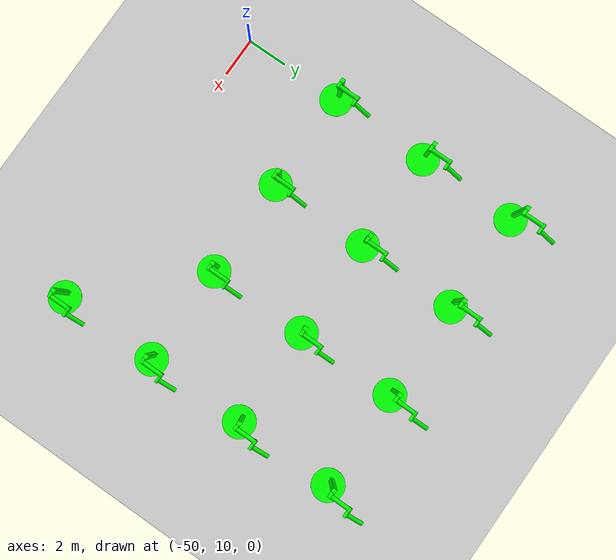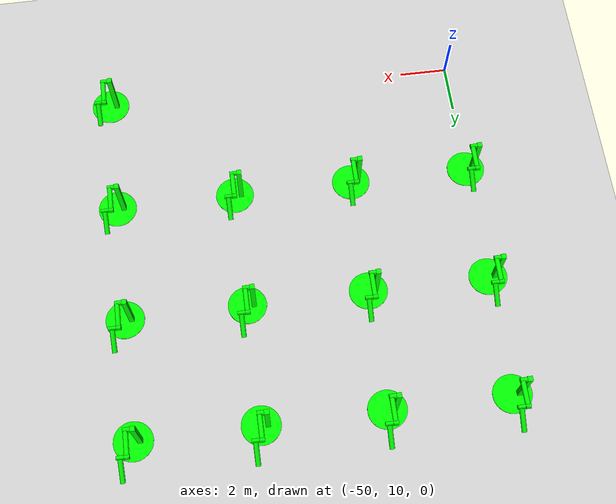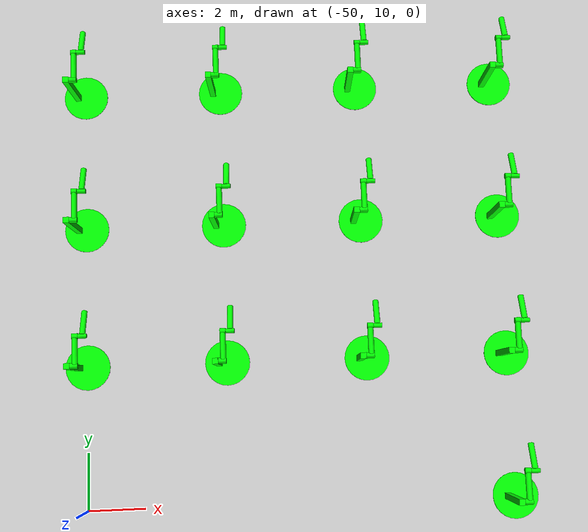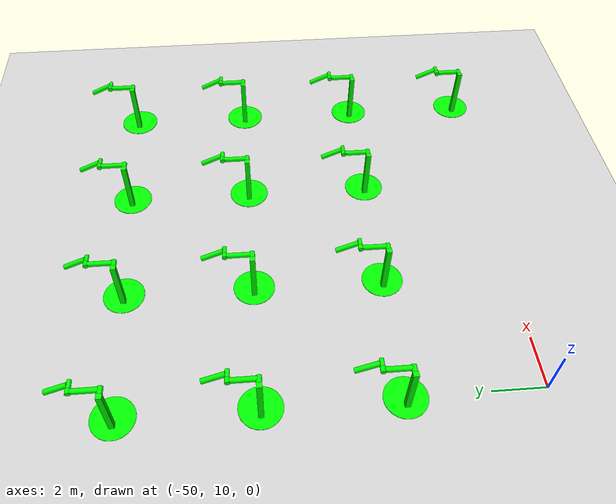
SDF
<sdf version="1.6">
 <world name="double_pendulums">
  <model name="ground_plane">
   <static>true</static>
   <link name="link">
    <collision name="collision">
     <geometry><plane><normal>0 0 1</normal><size>100 100</size></plane></geometry>
    </collision>
    <visual name="visual">
     <geometry><plane><normal>0 0 1</normal><size>100 100</size></plane></geometry>
     <material>
      <ambient>0.8 0.8 0.8 1</ambient>
      <diffuse>0.8 0.8 0.8 1</diffuse>
      <specular>0.8 0.8 0.8 1</specular>
     </material>
    </visual>
   </link>
  </model>
  <model name="dbl_pendulum_53">
   <pose>-35 10 0 0 0 0</pose>
   <link name="base">
    <inertial><mass>100</mass></inertial>
    <visual name="vis_plate_on_ground">
     <pose>0 0 0.01 0 0 0</pose>
     <geometry><cylinder><radius>0.8</radius><length>0.02</length></cylinder></geometry>
     <material><ambient>0 1 0 1</ambient><diffuse>0 1 0 1</diffuse><specular>0 1 0 1</specular></material>
    </visual>
    <visual name="vis_pole">
     <pose>-0.275 0 1.1 0 0 0</pose>
     <geometry><box><size>0.2 0.2 2.2</size></box></geometry>
     <material><ambient>0 1 0 1</ambient><diffuse>0 1 0 1</diffuse><specular>0 1 0 1</specular></material>
    </visual>
    <collision name="col_plate_on_ground">
     <pose>0 0 0.01 0 0 0</pose>
     <geometry><cylinder><radius>0.8</radius><length>0.02</length></cylinder></geometry>
    </collision>
    <collision name="col_pole">
     <pose>-0.275 0 1.1 0 0 0</pose>
     <geometry><box><size>0.2 0.2 2.2</size></box></geometry>
    </collision>
   </link>
   <link name="upper_link">
    <pose>0 0 2.1 -1.5708 0 0</pose>
    <inertial><pose>0 0 0.5 0 0 0</pose></inertial>
    <visual name="vis_upper_joint">
     <pose>-0.05 0 0 0 1.5708 0</pose>
     <geometry><cylinder><radius>0.1</radius><length>0.3</length></cylinder></geometry>
     <material><ambient>0 1 0 1</ambient><diffuse>0 1 0 1</diffuse><specular>0 1 0 1</specular></material>
    </visual>
    <visual name="vis_lower_joint">
     <pose>0 0 1.0 0 1.5708 0</pose>
     <geometry><cylinder><radius>0.1</radius><length>0.2</length></cylinder></geometry>
     <material><ambient>0 1 0 1</ambient><diffuse>0 1 0 1</diffuse><specular>0 1 0 1</specular></material>
    </visual>
    <visual name="vis_cylinder">
     <pose>0 0 0.5 0 0 0</pose>
     <geometry><cylinder><radius>0.1</radius><length>0.9</length></cylinder></geometry>
     <material><ambient>0 1 0 1</ambient><diffuse>0 1 0 1</diffuse><specular>0 1 0 1</specular></material>
    </visual>
    <collision name="col_upper_joint">
     <pose>-0.05 0 0 0 1.5708 0</pose>
     <geometry><cylinder><radius>0.1</radius><length>0.3</length></cylinder></geometry>
    </collision>
    <collision name="col_lower_joint">
     <pose>0 0 1.0 0 1.5708 0</pose>
     <geometry><cylinder><radius>0.1</radius><length>0.2</length></cylinder></geometry>
    </collision>
    <collision name="col_cylinder">
     <pose>0 0 0.5 0 0 0</pose>
     <geometry><cylinder><radius>0.1</radius><length>0.9</length></cylinder></geometry>
    </collision>
   </link>
   <link name="lower_link">
    <pose>0.25 1.0 2.1 -2 0 0</pose>
    <inertial><pose>0 0 0.5 0 0 0</pose></inertial>
    <visual name="vis_lower_joint">
     <pose>0 0 0 0 1.5708 0</pose>
     <geometry><cylinder><radius>0.08</radius><length>0.3</length></cylinder></geometry>
     <material><ambient>0 1 0 1</ambient><diffuse>0 1 0 1</diffuse><specular>0 1 0 1</specular></material>
    </visual>
    <visual name="vis_cylinder">
     <pose>0 0 0.5 0 0 0</pose>
     <geometry><cylinder><radius>0.1</radius><length>0.9</length></cylinder></geometry>
     <material><ambient>0 1 0 1</ambient><diffuse>0 1 0 1</diffuse><specular>0 1 0 1</specular></material>
    </visual>
    <collision name="col_lower_joint">
     <pose>0 0 0 0 1.5708 0</pose>
     <geometry><cylinder><radius>0.08</radius><length>0.3</length></cylinder></geometry>
    </collision>
    <collision name="col_cylinder">
     <pose>0 0 0.5 0 0 0</pose>
     <geometry><cylinder><radius>0.1</radius><length>0.9</length></cylinder></geometry>
    </collision>
   </link>
   <joint name="upper_joint" type="revolute">
    <parent>base</parent>
    <child>upper_link</child>
    <axis><xyz>1.0 0 0</xyz></axis>
   </joint>
   <joint name="lower_joint" type="revolute">
    <parent>upper_link</parent>
    <child>lower_link</child>
    <axis><xyz>1.0 0 0</xyz></axis>
   </joint>
  </model>
  <model name="dbl_pendulum_75">
   <pose>-50 15 0 0 0 0</pose>
   <link name="base">
    <inertial><mass>100</mass></inertial>
    <visual name="vis_plate_on_ground">
     <pose>0 0 0.01 0 0 0</pose>
     <geometry><cylinder><radius>0.8</radius><length>0.02</length></cylinder></geometry>
     <material><ambient>0 1 0 1</ambient><diffuse>0 1 0 1</diffuse><specular>0 1 0 1</specular></material>
    </visual>
    <visual name="vis_pole">
     <pose>-0.275 0 1.1 0 0 0</pose>
     <geometry><box><size>0.2 0.2 2.2</size></box></geometry>
     <material><ambient>0 1 0 1</ambient><diffuse>0 1 0 1</diffuse><specular>0 1 0 1</specular></material>
    </visual>
    <collision name="col_plate_on_ground">
     <pose>0 0 0.01 0 0 0</pose>
     <geometry><cylinder><radius>0.8</radius><length>0.02</length></cylinder></geometry>
    </collision>
    <collision name="col_pole">
     <pose>-0.275 0 1.1 0 0 0</pose>
     <geometry><box><size>0.2 0.2 2.2</size></box></geometry>
    </collision>
   </link>
   <link name="upper_link">
    <pose>0 0 2.1 -1.5708 0 0</pose>
    <inertial><pose>0 0 0.5 0 0 0</pose></inertial>
    <visual name="vis_upper_joint">
     <pose>-0.05 0 0 0 1.5708 0</pose>
     <geometry><cylinder><radius>0.1</radius><length>0.3</length></cylinder></geometry>
     <material><ambient>0 1 0 1</ambient><diffuse>0 1 0 1</diffuse><specular>0 1 0 1</specular></material>
    </visual>
    <visual name="vis_lower_joint">
     <pose>0 0 1.0 0 1.5708 0</pose>
     <geometry><cylinder><radius>0.1</radius><length>0.2</length></cylinder></geometry>
     <material><ambient>0 1 0 1</ambient><diffuse>0 1 0 1</diffuse><specular>0 1 0 1</specular></material>
    </visual>
    <visual name="vis_cylinder">
     <pose>0 0 0.5 0 0 0</pose>
     <geometry><cylinder><radius>0.1</radius><length>0.9</length></cylinder></geometry>
     <material><ambient>0 1 0 1</ambient><diffuse>0 1 0 1</diffuse><specular>0 1 0 1</specular></material>
    </visual>
    <collision name="col_upper_joint">
     <pose>-0.05 0 0 0 1.5708 0</pose>
     <geometry><cylinder><radius>0.1</radius><length>0.3</length></cylinder></geometry>
    </collision>
    <collision name="col_lower_joint">
     <pose>0 0 1.0 0 1.5708 0</pose>
     <geometry><cylinder><radius>0.1</radius><length>0.2</length></cylinder></geometry>
    </collision>
    <collision name="col_cylinder">
     <pose>0 0 0.5 0 0 0</pose>
     <geometry><cylinder><radius>0.1</radius><length>0.9</length></cylinder></geometry>
    </collision>
   </link>
   <link name="lower_link">
    <pose>0.25 1.0 2.1 -2 0 0</pose>
    <inertial><pose>0 0 0.5 0 0 0</pose></inertial>
    <visual name="vis_lower_joint">
     <pose>0 0 0 0 1.5708 0</pose>
     <geometry><cylinder><radius>0.08</radius><length>0.3</length></cylinder></geometry>
     <material><ambient>0 1 0 1</ambient><diffuse>0 1 0 1</diffuse><specular>0 1 0 1</specular></material>
    </visual>
    <visual name="vis_cylinder">
     <pose>0 0 0.5 0 0 0</pose>
     <geometry><cylinder><radius>0.1</radius><length>0.9</length></cylinder></geometry>
     <material><ambient>0 1 0 1</ambient><diffuse>0 1 0 1</diffuse><specular>0 1 0 1</specular></material>
    </visual>
    <collision name="col_lower_joint">
     <pose>0 0 0 0 1.5708 0</pose>
     <geometry><cylinder><radius>0.08</radius><length>0.3</length></cylinder></geometry>
    </collision>
    <collision name="col_cylinder">
     <pose>0 0 0.5 0 0 0</pose>
     <geometry><cylinder><radius>0.1</radius><length>0.9</length></cylinder></geometry>
    </collision>
   </link>
   <joint name="upper_joint" type="revolute">
    <parent>base</parent>
    <child>upper_link</child>
    <axis><xyz>1.0 0 0</xyz></axis>
   </joint>
   <joint name="lower_joint" type="revolute">
    <parent>upper_link</parent>
    <child>lower_link</child>
    <axis><xyz>1.0 0 0</xyz></axis>
   </joint>
  </model>
  <model name="dbl_pendulum_76">
   <pose>-45 15 0 0 0 0</pose>
   <link name="base">
    <inertial><mass>100</mass></inertial>
    <visual name="vis_plate_on_ground">
     <pose>0 0 0.01 0 0 0</pose>
     <geometry><cylinder><radius>0.8</radius><length>0.02</length></cylinder></geometry>
     <material><ambient>0 1 0 1</ambient><diffuse>0 1 0 1</diffuse><specular>0 1 0 1</specular></material>
    </visual>
    <visual name="vis_pole">
     <pose>-0.275 0 1.1 0 0 0</pose>
     <geometry><box><size>0.2 0.2 2.2</size></box></geometry>
     <material><ambient>0 1 0 1</ambient><diffuse>0 1 0 1</diffuse><specular>0 1 0 1</specular></material>
    </visual>
    <collision name="col_plate_on_ground">
     <pose>0 0 0.01 0 0 0</pose>
     <geometry><cylinder><radius>0.8</radius><length>0.02</length></cylinder></geometry>
    </collision>
    <collision name="col_pole">
     <pose>-0.275 0 1.1 0 0 0</pose>
     <geometry><box><size>0.2 0.2 2.2</size></box></geometry>
    </collision>
   </link>
   <link name="upper_link">
    <pose>0 0 2.1 -1.5708 0 0</pose>
    <inertial><pose>0 0 0.5 0 0 0</pose></inertial>
    <visual name="vis_upper_joint">
     <pose>-0.05 0 0 0 1.5708 0</pose>
     <geometry><cylinder><radius>0.1</radius><length>0.3</length></cylinder></geometry>
     <material><ambient>0 1 0 1</ambient><diffuse>0 1 0 1</diffuse><specular>0 1 0 1</specular></material>
    </visual>
    <visual name="vis_lower_joint">
     <pose>0 0 1.0 0 1.5708 0</pose>
     <geometry><cylinder><radius>0.1</radius><length>0.2</length></cylinder></geometry>
     <material><ambient>0 1 0 1</ambient><diffuse>0 1 0 1</diffuse><specular>0 1 0 1</specular></material>
    </visual>
    <visual name="vis_cylinder">
     <pose>0 0 0.5 0 0 0</pose>
     <geometry><cylinder><radius>0.1</radius><length>0.9</length></cylinder></geometry>
     <material><ambient>0 1 0 1</ambient><diffuse>0 1 0 1</diffuse><specular>0 1 0 1</specular></material>
    </visual>
    <collision name="col_upper_joint">
     <pose>-0.05 0 0 0 1.5708 0</pose>
     <geometry><cylinder><radius>0.1</radius><length>0.3</length></cylinder></geometry>
    </collision>
    <collision name="col_lower_joint">
     <pose>0 0 1.0 0 1.5708 0</pose>
     <geometry><cylinder><radius>0.1</radius><length>0.2</length></cylinder></geometry>
    </collision>
    <collision name="col_cylinder">
     <pose>0 0 0.5 0 0 0</pose>
     <geometry><cylinder><radius>0.1</radius><length>0.9</length></cylinder></geometry>
    </collision>
   </link>
   <link name="lower_link">
    <pose>0.25 1.0 2.1 -2 0 0</pose>
    <inertial><pose>0 0 0.5 0 0 0</pose></inertial>
    <visual name="vis_lower_joint">
     <pose>0 0 0 0 1.5708 0</pose>
     <geometry><cylinder><radius>0.08</radius><length>0.3</length></cylinder></geometry>
     <material><ambient>0 1 0 1</ambient><diffuse>0 1 0 1</diffuse><specular>0 1 0 1</specular></material>
    </visual>
    <visual name="vis_cylinder">
     <pose>0 0 0.5 0 0 0</pose>
     <geometry><cylinder><radius>0.1</radius><length>0.9</length></cylinder></geometry>
     <material><ambient>0 1 0 1</ambient><diffuse>0 1 0 1</diffuse><specular>0 1 0 1</specular></material>
    </visual>
    <collision name="col_lower_joint">
     <pose>0 0 0 0 1.5708 0</pose>
     <geometry><cylinder><radius>0.08</radius><length>0.3</length></cylinder></geometry>
    </collision>
    <collision name="col_cylinder">
     <pose>0 0 0.5 0 0 0</pose>
     <geometry><cylinder><radius>0.1</radius><length>0.9</length></cylinder></geometry>
    </collision>
   </link>
   <joint name="upper_joint" type="revolute">
    <parent>base</parent>
    <child>upper_link</child>
    <axis><xyz>1.0 0 0</xyz></axis>
   </joint>
   <joint name="lower_joint" type="revolute">
    <parent>upper_link</parent>
    <child>lower_link</child>
    <axis><xyz>1.0 0 0</xyz></axis>
   </joint>
  </model>
  <model name="dbl_pendulum_77">
   <pose>-40 15 0 0 0 0</pose>
   <link name="base">
    <inertial><mass>100</mass></inertial>
    <visual name="vis_plate_on_ground">
     <pose>0 0 0.01 0 0 0</pose>
     <geometry><cylinder><radius>0.8</radius><length>0.02</length></cylinder></geometry>
     <material><ambient>0 1 0 1</ambient><diffuse>0 1 0 1</diffuse><specular>0 1 0 1</specular></material>
    </visual>
    <visual name="vis_pole">
     <pose>-0.275 0 1.1 0 0 0</pose>
     <geometry><box><size>0.2 0.2 2.2</size></box></geometry>
     <material><ambient>0 1 0 1</ambient><diffuse>0 1 0 1</diffuse><specular>0 1 0 1</specular></material>
    </visual>
    <collision name="col_plate_on_ground">
     <pose>0 0 0.01 0 0 0</pose>
     <geometry><cylinder><radius>0.8</radius><length>0.02</length></cylinder></geometry>
    </collision>
    <collision name="col_pole">
     <pose>-0.275 0 1.1 0 0 0</pose>
     <geometry><box><size>0.2 0.2 2.2</size></box></geometry>
    </collision>
   </link>
   <link name="upper_link">
    <pose>0 0 2.1 -1.5708 0 0</pose>
    <inertial><pose>0 0 0.5 0 0 0</pose></inertial>
    <visual name="vis_upper_joint">
     <pose>-0.05 0 0 0 1.5708 0</pose>
     <geometry><cylinder><radius>0.1</radius><length>0.3</length></cylinder></geometry>
     <material><ambient>0 1 0 1</ambient><diffuse>0 1 0 1</diffuse><specular>0 1 0 1</specular></material>
    </visual>
    <visual name="vis_lower_joint">
     <pose>0 0 1.0 0 1.5708 0</pose>
     <geometry><cylinder><radius>0.1</radius><length>0.2</length></cylinder></geometry>
     <material><ambient>0 1 0 1</ambient><diffuse>0 1 0 1</diffuse><specular>0 1 0 1</specular></material>
    </visual>
    <visual name="vis_cylinder">
     <pose>0 0 0.5 0 0 0</pose>
     <geometry><cylinder><radius>0.1</radius><length>0.9</length></cylinder></geometry>
     <material><ambient>0 1 0 1</ambient><diffuse>0 1 0 1</diffuse><specular>0 1 0 1</specular></material>
    </visual>
    <collision name="col_upper_joint">
     <pose>-0.05 0 0 0 1.5708 0</pose>
     <geometry><cylinder><radius>0.1</radius><length>0.3</length></cylinder></geometry>
    </collision>
    <collision name="col_lower_joint">
     <pose>0 0 1.0 0 1.5708 0</pose>
     <geometry><cylinder><radius>0.1</radius><length>0.2</length></cylinder></geometry>
    </collision>
    <collision name="col_cylinder">
     <pose>0 0 0.5 0 0 0</pose>
     <geometry><cylinder><radius>0.1</radius><length>0.9</length></cylinder></geometry>
    </collision>
   </link>
   <link name="lower_link">
    <pose>0.25 1.0 2.1 -2 0 0</pose>
    <inertial><pose>0 0 0.5 0 0 0</pose></inertial>
    <visual name="vis_lower_joint">
     <pose>0 0 0 0 1.5708 0</pose>
     <geometry><cylinder><radius>0.08</radius><length>0.3</length></cylinder></geometry>
     <material><ambient>0 1 0 1</ambient><diffuse>0 1 0 1</diffuse><specular>0 1 0 1</specular></material>
    </visual>
    <visual name="vis_cylinder">
     <pose>0 0 0.5 0 0 0</pose>
     <geometry><cylinder><radius>0.1</radius><length>0.9</length></cylinder></geometry>
     <material><ambient>0 1 0 1</ambient><diffuse>0 1 0 1</diffuse><specular>0 1 0 1</specular></material>
    </visual>
    <collision name="col_lower_joint">
     <pose>0 0 0 0 1.5708 0</pose>
     <geometry><cylinder><radius>0.08</radius><length>0.3</length></cylinder></geometry>
    </collision>
    <collision name="col_cylinder">
     <pose>0 0 0.5 0 0 0</pose>
     <geometry><cylinder><radius>0.1</radius><length>0.9</length></cylinder></geometry>
    </collision>
   </link>
   <joint name="upper_joint" type="revolute">
    <parent>base</parent>
    <child>upper_link</child>
    <axis><xyz>1.0 0 0</xyz></axis>
   </joint>
   <joint name="lower_joint" type="revolute">
    <parent>upper_link</parent>
    <child>lower_link</child>
    <axis><xyz>1.0 0 0</xyz></axis>
   </joint>
  </model>
  <model name="dbl_pendulum_78">
   <pose>-35 15 0 0 0 0</pose>
   <link name="base">
    <inertial><mass>100</mass></inertial>
    <visual name="vis_plate_on_ground">
     <pose>0 0 0.01 0 0 0</pose>
     <geometry><cylinder><radius>0.8</radius><length>0.02</length></cylinder></geometry>
     <material><ambient>0 1 0 1</ambient><diffuse>0 1 0 1</diffuse><specular>0 1 0 1</specular></material>
    </visual>
    <visual name="vis_pole">
     <pose>-0.275 0 1.1 0 0 0</pose>
     <geometry><box><size>0.2 0.2 2.2</size></box></geometry>
     <material><ambient>0 1 0 1</ambient><diffuse>0 1 0 1</diffuse><specular>0 1 0 1</specular></material>
    </visual>
    <collision name="col_plate_on_ground">
     <pose>0 0 0.01 0 0 0</pose>
     <geometry><cylinder><radius>0.8</radius><length>0.02</length></cylinder></geometry>
    </collision>
    <collision name="col_pole">
     <pose>-0.275 0 1.1 0 0 0</pose>
     <geometry><box><size>0.2 0.2 2.2</size></box></geometry>
    </collision>
   </link>
   <link name="upper_link">
    <pose>0 0 2.1 -1.5708 0 0</pose>
    <inertial><pose>0 0 0.5 0 0 0</pose></inertial>
    <visual name="vis_upper_joint">
     <pose>-0.05 0 0 0 1.5708 0</pose>
     <geometry><cylinder><radius>0.1</radius><length>0.3</length></cylinder></geometry>
     <material><ambient>0 1 0 1</ambient><diffuse>0 1 0 1</diffuse><specular>0 1 0 1</specular></material>
    </visual>
    <visual name="vis_lower_joint">
     <pose>0 0 1.0 0 1.5708 0</pose>
     <geometry><cylinder><radius>0.1</radius><length>0.2</length></cylinder></geometry>
     <material><ambient>0 1 0 1</ambient><diffuse>0 1 0 1</diffuse><specular>0 1 0 1</specular></material>
    </visual>
    <visual name="vis_cylinder">
     <pose>0 0 0.5 0 0 0</pose>
     <geometry><cylinder><radius>0.1</radius><length>0.9</length></cylinder></geometry>
     <material><ambient>0 1 0 1</ambient><diffuse>0 1 0 1</diffuse><specular>0 1 0 1</specular></material>
    </visual>
    <collision name="col_upper_joint">
     <pose>-0.05 0 0 0 1.5708 0</pose>
     <geometry><cylinder><radius>0.1</radius><length>0.3</length></cylinder></geometry>
    </collision>
    <collision name="col_lower_joint">
     <pose>0 0 1.0 0 1.5708 0</pose>
     <geometry><cylinder><radius>0.1</radius><length>0.2</length></cylinder></geometry>
    </collision>
    <collision name="col_cylinder">
     <pose>0 0 0.5 0 0 0</pose>
     <geometry><cylinder><radius>0.1</radius><length>0.9</length></cylinder></geometry>
    </collision>
   </link>
   <link name="lower_link">
    <pose>0.25 1.0 2.1 -2 0 0</pose>
    <inertial><pose>0 0 0.5 0 0 0</pose></inertial>
    <visual name="vis_lower_joint">
     <pose>0 0 0 0 1.5708 0</pose>
     <geometry><cylinder><radius>0.08</radius><length>0.3</length></cylinder></geometry>
     <material><ambient>0 1 0 1</ambient><diffuse>0 1 0 1</diffuse><specular>0 1 0 1</specular></material>
    </visual>
    <visual name="vis_cylinder">
     <pose>0 0 0.5 0 0 0</pose>
     <geometry><cylinder><radius>0.1</radius><length>0.9</length></cylinder></geometry>
     <material><ambient>0 1 0 1</ambient><diffuse>0 1 0 1</diffuse><specular>0 1 0 1</specular></material>
    </visual>
    <collision name="col_lower_joint">
     <pose>0 0 0 0 1.5708 0</pose>
     <geometry><cylinder><radius>0.08</radius><length>0.3</length></cylinder></geometry>
    </collision>
    <collision name="col_cylinder">
     <pose>0 0 0.5 0 0 0</pose>
     <geometry><cylinder><radius>0.1</radius><length>0.9</length></cylinder></geometry>
    </collision>
   </link>
   <joint name="upper_joint" type="revolute">
    <parent>base</parent>
    <child>upper_link</child>
    <axis><xyz>1.0 0 0</xyz></axis>
   </joint>
   <joint name="lower_joint" type="revolute">
    <parent>upper_link</parent>
    <child>lower_link</child>
    <axis><xyz>1.0 0 0</xyz></axis>
   </joint>
  </model>
  <model name="dbl_pendulum_100">
   <pose>-50 20 0 0 0 0</pose>
   <link name="base">
    <inertial><mass>100</mass></inertial>
    <visual name="vis_plate_on_ground">
     <pose>0 0 0.01 0 0 0</pose>
     <geometry><cylinder><radius>0.8</radius><length>0.02</length></cylinder></geometry>
     <material><ambient>0 1 0 1</ambient><diffuse>0 1 0 1</diffuse><specular>0 1 0 1</specular></material>
    </visual>
    <visual name="vis_pole">
     <pose>-0.275 0 1.1 0 0 0</pose>
     <geometry><box><size>0.2 0.2 2.2</size></box></geometry>
     <material><ambient>0 1 0 1</ambient><diffuse>0 1 0 1</diffuse><specular>0 1 0 1</specular></material>
    </visual>
    <collision name="col_plate_on_ground">
     <pose>0 0 0.01 0 0 0</pose>
     <geometry><cylinder><radius>0.8</radius><length>0.02</length></cylinder></geometry>
    </collision>
    <collision name="col_pole">
     <pose>-0.275 0 1.1 0 0 0</pose>
     <geometry><box><size>0.2 0.2 2.2</size></box></geometry>
    </collision>
   </link>
   <link name="upper_link">
    <pose>0 0 2.1 -1.5708 0 0</pose>
    <inertial><pose>0 0 0.5 0 0 0</pose></inertial>
    <visual name="vis_upper_joint">
     <pose>-0.05 0 0 0 1.5708 0</pose>
     <geometry><cylinder><radius>0.1</radius><length>0.3</length></cylinder></geometry>
     <material><ambient>0 1 0 1</ambient><diffuse>0 1 0 1</diffuse><specular>0 1 0 1</specular></material>
    </visual>
    <visual name="vis_lower_joint">
     <pose>0 0 1.0 0 1.5708 0</pose>
     <geometry><cylinder><radius>0.1</radius><length>0.2</length></cylinder></geometry>
     <material><ambient>0 1 0 1</ambient><diffuse>0 1 0 1</diffuse><specular>0 1 0 1</specular></material>
    </visual>
    <visual name="vis_cylinder">
     <pose>0 0 0.5 0 0 0</pose>
     <geometry><cylinder><radius>0.1</radius><length>0.9</length></cylinder></geometry>
     <material><ambient>0 1 0 1</ambient><diffuse>0 1 0 1</diffuse><specular>0 1 0 1</specular></material>
    </visual>
    <collision name="col_upper_joint">
     <pose>-0.05 0 0 0 1.5708 0</pose>
     <geometry><cylinder><radius>0.1</radius><length>0.3</length></cylinder></geometry>
    </collision>
    <collision name="col_lower_joint">
     <pose>0 0 1.0 0 1.5708 0</pose>
     <geometry><cylinder><radius>0.1</radius><length>0.2</length></cylinder></geometry>
    </collision>
    <collision name="col_cylinder">
     <pose>0 0 0.5 0 0 0</pose>
     <geometry><cylinder><radius>0.1</radius><length>0.9</length></cylinder></geometry>
    </collision>
   </link>
   <link name="lower_link">
    <pose>0.25 1.0 2.1 -2 0 0</pose>
    <inertial><pose>0 0 0.5 0 0 0</pose></inertial>
    <visual name="vis_lower_joint">
     <pose>0 0 0 0 1.5708 0</pose>
     <geometry><cylinder><radius>0.08</radius><length>0.3</length></cylinder></geometry>
     <material><ambient>0 1 0 1</ambient><diffuse>0 1 0 1</diffuse><specular>0 1 0 1</specular></material>
    </visual>
    <visual name="vis_cylinder">
     <pose>0 0 0.5 0 0 0</pose>
     <geometry><cylinder><radius>0.1</radius><length>0.9</length></cylinder></geometry>
     <material><ambient>0 1 0 1</ambient><diffuse>0 1 0 1</diffuse><specular>0 1 0 1</specular></material>
    </visual>
    <collision name="col_lower_joint">
     <pose>0 0 0 0 1.5708 0</pose>
     <geometry><cylinder><radius>0.08</radius><length>0.3</length></cylinder></geometry>
    </collision>
    <collision name="col_cylinder">
     <pose>0 0 0.5 0 0 0</pose>
     <geometry><cylinder><radius>0.1</radius><length>0.9</length></cylinder></geometry>
    </collision>
   </link>
   <joint name="upper_joint" type="revolute">
    <parent>base</parent>
    <child>upper_link</child>
    <axis><xyz>1.0 0 0</xyz></axis>
   </joint>
   <joint name="lower_joint" type="revolute">
    <parent>upper_link</parent>
    <child>lower_link</child>
    <axis><xyz>1.0 0 0</xyz></axis>
   </joint>
  </model>
  <model name="dbl_pendulum_101">
   <pose>-45 20 0 0 0 0</pose>
   <link name="base">
    <inertial><mass>100</mass></inertial>
    <visual name="vis_plate_on_ground">
     <pose>0 0 0.01 0 0 0</pose>
     <geometry><cylinder><radius>0.8</radius><length>0.02</length></cylinder></geometry>
     <material><ambient>0 1 0 1</ambient><diffuse>0 1 0 1</diffuse><specular>0 1 0 1</specular></material>
    </visual>
    <visual name="vis_pole">
     <pose>-0.275 0 1.1 0 0 0</pose>
     <geometry><box><size>0.2 0.2 2.2</size></box></geometry>
     <material><ambient>0 1 0 1</ambient><diffuse>0 1 0 1</diffuse><specular>0 1 0 1</specular></material>
    </visual>
    <collision name="col_plate_on_ground">
     <pose>0 0 0.01 0 0 0</pose>
     <geometry><cylinder><radius>0.8</radius><length>0.02</length></cylinder></geometry>
    </collision>
    <collision name="col_pole">
     <pose>-0.275 0 1.1 0 0 0</pose>
     <geometry><box><size>0.2 0.2 2.2</size></box></geometry>
    </collision>
   </link>
   <link name="upper_link">
    <pose>0 0 2.1 -1.5708 0 0</pose>
    <inertial><pose>0 0 0.5 0 0 0</pose></inertial>
    <visual name="vis_upper_joint">
     <pose>-0.05 0 0 0 1.5708 0</pose>
     <geometry><cylinder><radius>0.1</radius><length>0.3</length></cylinder></geometry>
     <material><ambient>0 1 0 1</ambient><diffuse>0 1 0 1</diffuse><specular>0 1 0 1</specular></material>
    </visual>
    <visual name="vis_lower_joint">
     <pose>0 0 1.0 0 1.5708 0</pose>
     <geometry><cylinder><radius>0.1</radius><length>0.2</length></cylinder></geometry>
     <material><ambient>0 1 0 1</ambient><diffuse>0 1 0 1</diffuse><specular>0 1 0 1</specular></material>
    </visual>
    <visual name="vis_cylinder">
     <pose>0 0 0.5 0 0 0</pose>
     <geometry><cylinder><radius>0.1</radius><length>0.9</length></cylinder></geometry>
     <material><ambient>0 1 0 1</ambient><diffuse>0 1 0 1</diffuse><specular>0 1 0 1</specular></material>
    </visual>
    <collision name="col_upper_joint">
     <pose>-0.05 0 0 0 1.5708 0</pose>
     <geometry><cylinder><radius>0.1</radius><length>0.3</length></cylinder></geometry>
    </collision>
    <collision name="col_lower_joint">
     <pose>0 0 1.0 0 1.5708 0</pose>
     <geometry><cylinder><radius>0.1</radius><length>0.2</length></cylinder></geometry>
    </collision>
    <collision name="col_cylinder">
     <pose>0 0 0.5 0 0 0</pose>
     <geometry><cylinder><radius>0.1</radius><length>0.9</length></cylinder></geometry>
    </collision>
   </link>
   <link name="lower_link">
    <pose>0.25 1.0 2.1 -2 0 0</pose>
    <inertial><pose>0 0 0.5 0 0 0</pose></inertial>
    <visual name="vis_lower_joint">
     <pose>0 0 0 0 1.5708 0</pose>
     <geometry><cylinder><radius>0.08</radius><length>0.3</length></cylinder></geometry>
     <material><ambient>0 1 0 1</ambient><diffuse>0 1 0 1</diffuse><specular>0 1 0 1</specular></material>
    </visual>
    <visual name="vis_cylinder">
     <pose>0 0 0.5 0 0 0</pose>
     <geometry><cylinder><radius>0.1</radius><length>0.9</length></cylinder></geometry>
     <material><ambient>0 1 0 1</ambient><diffuse>0 1 0 1</diffuse><specular>0 1 0 1</specular></material>
    </visual>
    <collision name="col_lower_joint">
     <pose>0 0 0 0 1.5708 0</pose>
     <geometry><cylinder><radius>0.08</radius><length>0.3</length></cylinder></geometry>
    </collision>
    <collision name="col_cylinder">
     <pose>0 0 0.5 0 0 0</pose>
     <geometry><cylinder><radius>0.1</radius><length>0.9</length></cylinder></geometry>
    </collision>
   </link>
   <joint name="upper_joint" type="revolute">
    <parent>base</parent>
    <child>upper_link</child>
    <axis><xyz>1.0 0 0</xyz></axis>
   </joint>
   <joint name="lower_joint" type="revolute">
    <parent>upper_link</parent>
    <child>lower_link</child>
    <axis><xyz>1.0 0 0</xyz></axis>
   </joint>
  </model>
  <model name="dbl_pendulum_102">
   <pose>-40 20 0 0 0 0</pose>
   <link name="base">
    <inertial><mass>100</mass></inertial>
    <visual name="vis_plate_on_ground">
     <pose>0 0 0.01 0 0 0</pose>
     <geometry><cylinder><radius>0.8</radius><length>0.02</length></cylinder></geometry>
     <material><ambient>0 1 0 1</ambient><diffuse>0 1 0 1</diffuse><specular>0 1 0 1</specular></material>
    </visual>
    <visual name="vis_pole">
     <pose>-0.275 0 1.1 0 0 0</pose>
     <geometry><box><size>0.2 0.2 2.2</size></box></geometry>
     <material><ambient>0 1 0 1</ambient><diffuse>0 1 0 1</diffuse><specular>0 1 0 1</specular></material>
    </visual>
    <collision name="col_plate_on_ground">
     <pose>0 0 0.01 0 0 0</pose>
     <geometry><cylinder><radius>0.8</radius><length>0.02</length></cylinder></geometry>
    </collision>
    <collision name="col_pole">
     <pose>-0.275 0 1.1 0 0 0</pose>
     <geometry><box><size>0.2 0.2 2.2</size></box></geometry>
    </collision>
   </link>
   <link name="upper_link">
    <pose>0 0 2.1 -1.5708 0 0</pose>
    <inertial><pose>0 0 0.5 0 0 0</pose></inertial>
    <visual name="vis_upper_joint">
     <pose>-0.05 0 0 0 1.5708 0</pose>
     <geometry><cylinder><radius>0.1</radius><length>0.3</length></cylinder></geometry>
     <material><ambient>0 1 0 1</ambient><diffuse>0 1 0 1</diffuse><specular>0 1 0 1</specular></material>
    </visual>
    <visual name="vis_lower_joint">
     <pose>0 0 1.0 0 1.5708 0</pose>
     <geometry><cylinder><radius>0.1</radius><length>0.2</length></cylinder></geometry>
     <material><ambient>0 1 0 1</ambient><diffuse>0 1 0 1</diffuse><specular>0 1 0 1</specular></material>
    </visual>
    <visual name="vis_cylinder">
     <pose>0 0 0.5 0 0 0</pose>
     <geometry><cylinder><radius>0.1</radius><length>0.9</length></cylinder></geometry>
     <material><ambient>0 1 0 1</ambient><diffuse>0 1 0 1</diffuse><specular>0 1 0 1</specular></material>
    </visual>
    <collision name="col_upper_joint">
     <pose>-0.05 0 0 0 1.5708 0</pose>
     <geometry><cylinder><radius>0.1</radius><length>0.3</length></cylinder></geometry>
    </collision>
    <collision name="col_lower_joint">
     <pose>0 0 1.0 0 1.5708 0</pose>
     <geometry><cylinder><radius>0.1</radius><length>0.2</length></cylinder></geometry>
    </collision>
    <collision name="col_cylinder">
     <pose>0 0 0.5 0 0 0</pose>
     <geometry><cylinder><radius>0.1</radius><length>0.9</length></cylinder></geometry>
    </collision>
   </link>
   <link name="lower_link">
    <pose>0.25 1.0 2.1 -2 0 0</pose>
    <inertial><pose>0 0 0.5 0 0 0</pose></inertial>
    <visual name="vis_lower_joint">
     <pose>0 0 0 0 1.5708 0</pose>
     <geometry><cylinder><radius>0.08</radius><length>0.3</length></cylinder></geometry>
     <material><ambient>0 1 0 1</ambient><diffuse>0 1 0 1</diffuse><specular>0 1 0 1</specular></material>
    </visual>
    <visual name="vis_cylinder">
     <pose>0 0 0.5 0 0 0</pose>
     <geometry><cylinder><radius>0.1</radius><length>0.9</length></cylinder></geometry>
     <material><ambient>0 1 0 1</ambient><diffuse>0 1 0 1</diffuse><specular>0 1 0 1</specular></material>
    </visual>
    <collision name="col_lower_joint">
     <pose>0 0 0 0 1.5708 0</pose>
     <geometry><cylinder><radius>0.08</radius><length>0.3</length></cylinder></geometry>
    </collision>
    <collision name="col_cylinder">
     <pose>0 0 0.5 0 0 0</pose>
     <geometry><cylinder><radius>0.1</radius><length>0.9</length></cylinder></geometry>
    </collision>
   </link>
   <joint name="upper_joint" type="revolute">
    <parent>base</parent>
    <child>upper_link</child>
    <axis><xyz>1.0 0 0</xyz></axis>
   </joint>
   <joint name="lower_joint" type="revolute">
    <parent>upper_link</parent>
    <child>lower_link</child>
    <axis><xyz>1.0 0 0</xyz></axis>
   </joint>
  </model>
  <model name="dbl_pendulum_103">
   <pose>-35 20 0 0 0 0</pose>
   <link name="base">
    <inertial><mass>100</mass></inertial>
    <visual name="vis_plate_on_ground">
     <pose>0 0 0.01 0 0 0</pose>
     <geometry><cylinder><radius>0.8</radius><length>0.02</length></cylinder></geometry>
     <material><ambient>0 1 0 1</ambient><diffuse>0 1 0 1</diffuse><specular>0 1 0 1</specular></material>
    </visual>
    <visual name="vis_pole">
     <pose>-0.275 0 1.1 0 0 0</pose>
     <geometry><box><size>0.2 0.2 2.2</size></box></geometry>
     <material><ambient>0 1 0 1</ambient><diffuse>0 1 0 1</diffuse><specular>0 1 0 1</specular></material>
    </visual>
    <collision name="col_plate_on_ground">
     <pose>0 0 0.01 0 0 0</pose>
     <geometry><cylinder><radius>0.8</radius><length>0.02</length></cylinder></geometry>
    </collision>
    <collision name="col_pole">
     <pose>-0.275 0 1.1 0 0 0</pose>
     <geometry><box><size>0.2 0.2 2.2</size></box></geometry>
    </collision>
   </link>
   <link name="upper_link">
    <pose>0 0 2.1 -1.5708 0 0</pose>
    <inertial><pose>0 0 0.5 0 0 0</pose></inertial>
    <visual name="vis_upper_joint">
     <pose>-0.05 0 0 0 1.5708 0</pose>
     <geometry><cylinder><radius>0.1</radius><length>0.3</length></cylinder></geometry>
     <material><ambient>0 1 0 1</ambient><diffuse>0 1 0 1</diffuse><specular>0 1 0 1</specular></material>
    </visual>
    <visual name="vis_lower_joint">
     <pose>0 0 1.0 0 1.5708 0</pose>
     <geometry><cylinder><radius>0.1</radius><length>0.2</length></cylinder></geometry>
     <material><ambient>0 1 0 1</ambient><diffuse>0 1 0 1</diffuse><specular>0 1 0 1</specular></material>
    </visual>
    <visual name="vis_cylinder">
     <pose>0 0 0.5 0 0 0</pose>
     <geometry><cylinder><radius>0.1</radius><length>0.9</length></cylinder></geometry>
     <material><ambient>0 1 0 1</ambient><diffuse>0 1 0 1</diffuse><specular>0 1 0 1</specular></material>
    </visual>
    <collision name="col_upper_joint">
     <pose>-0.05 0 0 0 1.5708 0</pose>
     <geometry><cylinder><radius>0.1</radius><length>0.3</length></cylinder></geometry>
    </collision>
    <collision name="col_lower_joint">
     <pose>0 0 1.0 0 1.5708 0</pose>
     <geometry><cylinder><radius>0.1</radius><length>0.2</length></cylinder></geometry>
    </collision>
    <collision name="col_cylinder">
     <pose>0 0 0.5 0 0 0</pose>
     <geometry><cylinder><radius>0.1</radius><length>0.9</length></cylinder></geometry>
    </collision>
   </link>
   <link name="lower_link">
    <pose>0.25 1.0 2.1 -2 0 0</pose>
    <inertial><pose>0 0 0.5 0 0 0</pose></inertial>
    <visual name="vis_lower_joint">
     <pose>0 0 0 0 1.5708 0</pose>
     <geometry><cylinder><radius>0.08</radius><length>0.3</length></cylinder></geometry>
     <material><ambient>0 1 0 1</ambient><diffuse>0 1 0 1</diffuse><specular>0 1 0 1</specular></material>
    </visual>
    <visual name="vis_cylinder">
     <pose>0 0 0.5 0 0 0</pose>
     <geometry><cylinder><radius>0.1</radius><length>0.9</length></cylinder></geometry>
     <material><ambient>0 1 0 1</ambient><diffuse>0 1 0 1</diffuse><specular>0 1 0 1</specular></material>
    </visual>
    <collision name="col_lower_joint">
     <pose>0 0 0 0 1.5708 0</pose>
     <geometry><cylinder><radius>0.08</radius><length>0.3</length></cylinder></geometry>
    </collision>
    <collision name="col_cylinder">
     <pose>0 0 0.5 0 0 0</pose>
     <geometry><cylinder><radius>0.1</radius><length>0.9</length></cylinder></geometry>
    </collision>
   </link>
   <joint name="upper_joint" type="revolute">
    <parent>base</parent>
    <child>upper_link</child>
    <axis><xyz>1.0 0 0</xyz></axis>
   </joint>
   <joint name="lower_joint" type="revolute">
    <parent>upper_link</parent>
    <child>lower_link</child>
    <axis><xyz>1.0 0 0</xyz></axis>
   </joint>
  </model>
  <model name="dbl_pendulum_125">
   <pose>-50 25 0 0 0 0</pose>
   <link name="base">
    <inertial><mass>100</mass></inertial>
    <visual name="vis_plate_on_ground">
     <pose>0 0 0.01 0 0 0</pose>
     <geometry><cylinder><radius>0.8</radius><length>0.02</length></cylinder></geometry>
     <material><ambient>0 1 0 1</ambient><diffuse>0 1 0 1</diffuse><specular>0 1 0 1</specular></material>
    </visual>
    <visual name="vis_pole">
     <pose>-0.275 0 1.1 0 0 0</pose>
     <geometry><box><size>0.2 0.2 2.2</size></box></geometry>
     <material><ambient>0 1 0 1</ambient><diffuse>0 1 0 1</diffuse><specular>0 1 0 1</specular></material>
    </visual>
    <collision name="col_plate_on_ground">
     <pose>0 0 0.01 0 0 0</pose>
     <geometry><cylinder><radius>0.8</radius><length>0.02</length></cylinder></geometry>
    </collision>
    <collision name="col_pole">
     <pose>-0.275 0 1.1 0 0 0</pose>
     <geometry><box><size>0.2 0.2 2.2</size></box></geometry>
    </collision>
   </link>
   <link name="upper_link">
    <pose>0 0 2.1 -1.5708 0 0</pose>
    <inertial><pose>0 0 0.5 0 0 0</pose></inertial>
    <visual name="vis_upper_joint">
     <pose>-0.05 0 0 0 1.5708 0</pose>
     <geometry><cylinder><radius>0.1</radius><length>0.3</length></cylinder></geometry>
     <material><ambient>0 1 0 1</ambient><diffuse>0 1 0 1</diffuse><specular>0 1 0 1</specular></material>
    </visual>
    <visual name="vis_lower_joint">
     <pose>0 0 1.0 0 1.5708 0</pose>
     <geometry><cylinder><radius>0.1</radius><length>0.2</length></cylinder></geometry>
     <material><ambient>0 1 0 1</ambient><diffuse>0 1 0 1</diffuse><specular>0 1 0 1</specular></material>
    </visual>
    <visual name="vis_cylinder">
     <pose>0 0 0.5 0 0 0</pose>
     <geometry><cylinder><radius>0.1</radius><length>0.9</length></cylinder></geometry>
     <material><ambient>0 1 0 1</ambient><diffuse>0 1 0 1</diffuse><specular>0 1 0 1</specular></material>
    </visual>
    <collision name="col_upper_joint">
     <pose>-0.05 0 0 0 1.5708 0</pose>
     <geometry><cylinder><radius>0.1</radius><length>0.3</length></cylinder></geometry>
    </collision>
    <collision name="col_lower_joint">
     <pose>0 0 1.0 0 1.5708 0</pose>
     <geometry><cylinder><radius>0.1</radius><length>0.2</length></cylinder></geometry>
    </collision>
    <collision name="col_cylinder">
     <pose>0 0 0.5 0 0 0</pose>
     <geometry><cylinder><radius>0.1</radius><length>0.9</length></cylinder></geometry>
    </collision>
   </link>
   <link name="lower_link">
    <pose>0.25 1.0 2.1 -2 0 0</pose>
    <inertial><pose>0 0 0.5 0 0 0</pose></inertial>
    <visual name="vis_lower_joint">
     <pose>0 0 0 0 1.5708 0</pose>
     <geometry><cylinder><radius>0.08</radius><length>0.3</length></cylinder></geometry>
     <material><ambient>0 1 0 1</ambient><diffuse>0 1 0 1</diffuse><specular>0 1 0 1</specular></material>
    </visual>
    <visual name="vis_cylinder">
     <pose>0 0 0.5 0 0 0</pose>
     <geometry><cylinder><radius>0.1</radius><length>0.9</length></cylinder></geometry>
     <material><ambient>0 1 0 1</ambient><diffuse>0 1 0 1</diffuse><specular>0 1 0 1</specular></material>
    </visual>
    <collision name="col_lower_joint">
     <pose>0 0 0 0 1.5708 0</pose>
     <geometry><cylinder><radius>0.08</radius><length>0.3</length></cylinder></geometry>
    </collision>
    <collision name="col_cylinder">
     <pose>0 0 0.5 0 0 0</pose>
     <geometry><cylinder><radius>0.1</radius><length>0.9</length></cylinder></geometry>
    </collision>
   </link>
   <joint name="upper_joint" type="revolute">
    <parent>base</parent>
    <child>upper_link</child>
    <axis><xyz>1.0 0 0</xyz></axis>
   </joint>
   <joint name="lower_joint" type="revolute">
    <parent>upper_link</parent>
    <child>lower_link</child>
    <axis><xyz>1.0 0 0</xyz></axis>
   </joint>
  </model>
  <model name="dbl_pendulum_126">
   <pose>-45 25 0 0 0 0</pose>
   <link name="base">
    <inertial><mass>100</mass></inertial>
    <visual name="vis_plate_on_ground">
     <pose>0 0 0.01 0 0 0</pose>
     <geometry><cylinder><radius>0.8</radius><length>0.02</length></cylinder></geometry>
     <material><ambient>0 1 0 1</ambient><diffuse>0 1 0 1</diffuse><specular>0 1 0 1</specular></material>
    </visual>
    <visual name="vis_pole">
     <pose>-0.275 0 1.1 0 0 0</pose>
     <geometry><box><size>0.2 0.2 2.2</size></box></geometry>
     <material><ambient>0 1 0 1</ambient><diffuse>0 1 0 1</diffuse><specular>0 1 0 1</specular></material>
    </visual>
    <collision name="col_plate_on_ground">
     <pose>0 0 0.01 0 0 0</pose>
     <geometry><cylinder><radius>0.8</radius><length>0.02</length></cylinder></geometry>
    </collision>
    <collision name="col_pole">
     <pose>-0.275 0 1.1 0 0 0</pose>
     <geometry><box><size>0.2 0.2 2.2</size></box></geometry>
    </collision>
   </link>
   <link name="upper_link">
    <pose>0 0 2.1 -1.5708 0 0</pose>
    <inertial><pose>0 0 0.5 0 0 0</pose></inertial>
    <visual name="vis_upper_joint">
     <pose>-0.05 0 0 0 1.5708 0</pose>
     <geometry><cylinder><radius>0.1</radius><length>0.3</length></cylinder></geometry>
     <material><ambient>0 1 0 1</ambient><diffuse>0 1 0 1</diffuse><specular>0 1 0 1</specular></material>
    </visual>
    <visual name="vis_lower_joint">
     <pose>0 0 1.0 0 1.5708 0</pose>
     <geometry><cylinder><radius>0.1</radius><length>0.2</length></cylinder></geometry>
     <material><ambient>0 1 0 1</ambient><diffuse>0 1 0 1</diffuse><specular>0 1 0 1</specular></material>
    </visual>
    <visual name="vis_cylinder">
     <pose>0 0 0.5 0 0 0</pose>
     <geometry><cylinder><radius>0.1</radius><length>0.9</length></cylinder></geometry>
     <material><ambient>0 1 0 1</ambient><diffuse>0 1 0 1</diffuse><specular>0 1 0 1</specular></material>
    </visual>
    <collision name="col_upper_joint">
     <pose>-0.05 0 0 0 1.5708 0</pose>
     <geometry><cylinder><radius>0.1</radius><length>0.3</length></cylinder></geometry>
    </collision>
    <collision name="col_lower_joint">
     <pose>0 0 1.0 0 1.5708 0</pose>
     <geometry><cylinder><radius>0.1</radius><length>0.2</length></cylinder></geometry>
    </collision>
    <collision name="col_cylinder">
     <pose>0 0 0.5 0 0 0</pose>
     <geometry><cylinder><radius>0.1</radius><length>0.9</length></cylinder></geometry>
    </collision>
   </link>
   <link name="lower_link">
    <pose>0.25 1.0 2.1 -2 0 0</pose>
    <inertial><pose>0 0 0.5 0 0 0</pose></inertial>
    <visual name="vis_lower_joint">
     <pose>0 0 0 0 1.5708 0</pose>
     <geometry><cylinder><radius>0.08</radius><length>0.3</length></cylinder></geometry>
     <material><ambient>0 1 0 1</ambient><diffuse>0 1 0 1</diffuse><specular>0 1 0 1</specular></material>
    </visual>
    <visual name="vis_cylinder">
     <pose>0 0 0.5 0 0 0</pose>
     <geometry><cylinder><radius>0.1</radius><length>0.9</length></cylinder></geometry>
     <material><ambient>0 1 0 1</ambient><diffuse>0 1 0 1</diffuse><specular>0 1 0 1</specular></material>
    </visual>
    <collision name="col_lower_joint">
     <pose>0 0 0 0 1.5708 0</pose>
     <geometry><cylinder><radius>0.08</radius><length>0.3</length></cylinder></geometry>
    </collision>
    <collision name="col_cylinder">
     <pose>0 0 0.5 0 0 0</pose>
     <geometry><cylinder><radius>0.1</radius><length>0.9</length></cylinder></geometry>
    </collision>
   </link>
   <joint name="upper_joint" type="revolute">
    <parent>base</parent>
    <child>upper_link</child>
    <axis><xyz>1.0 0 0</xyz></axis>
   </joint>
   <joint name="lower_joint" type="revolute">
    <parent>upper_link</parent>
    <child>lower_link</child>
    <axis><xyz>1.0 0 0</xyz></axis>
   </joint>
  </model>
  <model name="dbl_pendulum_127">
   <pose>-40 25 0 0 0 0</pose>
   <link name="base">
    <inertial><mass>100</mass></inertial>
    <visual name="vis_plate_on_ground">
     <pose>0 0 0.01 0 0 0</pose>
     <geometry><cylinder><radius>0.8</radius><length>0.02</length></cylinder></geometry>
     <material><ambient>0 1 0 1</ambient><diffuse>0 1 0 1</diffuse><specular>0 1 0 1</specular></material>
    </visual>
    <visual name="vis_pole">
     <pose>-0.275 0 1.1 0 0 0</pose>
     <geometry><box><size>0.2 0.2 2.2</size></box></geometry>
     <material><ambient>0 1 0 1</ambient><diffuse>0 1 0 1</diffuse><specular>0 1 0 1</specular></material>
    </visual>
    <collision name="col_plate_on_ground">
     <pose>0 0 0.01 0 0 0</pose>
     <geometry><cylinder><radius>0.8</radius><length>0.02</length></cylinder></geometry>
    </collision>
    <collision name="col_pole">
     <pose>-0.275 0 1.1 0 0 0</pose>
     <geometry><box><size>0.2 0.2 2.2</size></box></geometry>
    </collision>
   </link>
   <link name="upper_link">
    <pose>0 0 2.1 -1.5708 0 0</pose>
    <inertial><pose>0 0 0.5 0 0 0</pose></inertial>
    <visual name="vis_upper_joint">
     <pose>-0.05 0 0 0 1.5708 0</pose>
     <geometry><cylinder><radius>0.1</radius><length>0.3</length></cylinder></geometry>
     <material><ambient>0 1 0 1</ambient><diffuse>0 1 0 1</diffuse><specular>0 1 0 1</specular></material>
    </visual>
    <visual name="vis_lower_joint">
     <pose>0 0 1.0 0 1.5708 0</pose>
     <geometry><cylinder><radius>0.1</radius><length>0.2</length></cylinder></geometry>
     <material><ambient>0 1 0 1</ambient><diffuse>0 1 0 1</diffuse><specular>0 1 0 1</specular></material>
    </visual>
    <visual name="vis_cylinder">
     <pose>0 0 0.5 0 0 0</pose>
     <geometry><cylinder><radius>0.1</radius><length>0.9</length></cylinder></geometry>
     <material><ambient>0 1 0 1</ambient><diffuse>0 1 0 1</diffuse><specular>0 1 0 1</specular></material>
    </visual>
    <collision name="col_upper_joint">
     <pose>-0.05 0 0 0 1.5708 0</pose>
     <geometry><cylinder><radius>0.1</radius><length>0.3</length></cylinder></geometry>
    </collision>
    <collision name="col_lower_joint">
     <pose>0 0 1.0 0 1.5708 0</pose>
     <geometry><cylinder><radius>0.1</radius><length>0.2</length></cylinder></geometry>
    </collision>
    <collision name="col_cylinder">
     <pose>0 0 0.5 0 0 0</pose>
     <geometry><cylinder><radius>0.1</radius><length>0.9</length></cylinder></geometry>
    </collision>
   </link>
   <link name="lower_link">
    <pose>0.25 1.0 2.1 -2 0 0</pose>
    <inertial><pose>0 0 0.5 0 0 0</pose></inertial>
    <visual name="vis_lower_joint">
     <pose>0 0 0 0 1.5708 0</pose>
     <geometry><cylinder><radius>0.08</radius><length>0.3</length></cylinder></geometry>
     <material><ambient>0 1 0 1</ambient><diffuse>0 1 0 1</diffuse><specular>0 1 0 1</specular></material>
    </visual>
    <visual name="vis_cylinder">
     <pose>0 0 0.5 0 0 0</pose>
     <geometry><cylinder><radius>0.1</radius><length>0.9</length></cylinder></geometry>
     <material><ambient>0 1 0 1</ambient><diffuse>0 1 0 1</diffuse><specular>0 1 0 1</specular></material>
    </visual>
    <collision name="col_lower_joint">
     <pose>0 0 0 0 1.5708 0</pose>
     <geometry><cylinder><radius>0.08</radius><length>0.3</length></cylinder></geometry>
    </collision>
    <collision name="col_cylinder">
     <pose>0 0 0.5 0 0 0</pose>
     <geometry><cylinder><radius>0.1</radius><length>0.9</length></cylinder></geometry>
    </collision>
   </link>
   <joint name="upper_joint" type="revolute">
    <parent>base</parent>
    <child>upper_link</child>
    <axis><xyz>1.0 0 0</xyz></axis>
   </joint>
   <joint name="lower_joint" type="revolute">
    <parent>upper_link</parent>
    <child>lower_link</child>
    <axis><xyz>1.0 0 0</xyz></axis>
   </joint>
  </model>
  <model name="dbl_pendulum_128">
   <pose>-35 25 0 0 0 0</pose>
   <link name="base">
    <inertial><mass>100</mass></inertial>
    <visual name="vis_plate_on_ground">
     <pose>0 0 0.01 0 0 0</pose>
     <geometry><cylinder><radius>0.8</radius><length>0.02</length></cylinder></geometry>
     <material><ambient>0 1 0 1</ambient><diffuse>0 1 0 1</diffuse><specular>0 1 0 1</specular></material>
    </visual>
    <visual name="vis_pole">
     <pose>-0.275 0 1.1 0 0 0</pose>
     <geometry><box><size>0.2 0.2 2.2</size></box></geometry>
     <material><ambient>0 1 0 1</ambient><diffuse>0 1 0 1</diffuse><specular>0 1 0 1</specular></material>
    </visual>
    <collision name="col_plate_on_ground">
     <pose>0 0 0.01 0 0 0</pose>
     <geometry><cylinder><radius>0.8</radius><length>0.02</length></cylinder></geometry>
    </collision>
    <collision name="col_pole">
     <pose>-0.275 0 1.1 0 0 0</pose>
     <geometry><box><size>0.2 0.2 2.2</size></box></geometry>
    </collision>
   </link>
   <link name="upper_link">
    <pose>0 0 2.1 -1.5708 0 0</pose>
    <inertial><pose>0 0 0.5 0 0 0</pose></inertial>
    <visual name="vis_upper_joint">
     <pose>-0.05 0 0 0 1.5708 0</pose>
     <geometry><cylinder><radius>0.1</radius><length>0.3</length></cylinder></geometry>
     <material><ambient>0 1 0 1</ambient><diffuse>0 1 0 1</diffuse><specular>0 1 0 1</specular></material>
    </visual>
    <visual name="vis_lower_joint">
     <pose>0 0 1.0 0 1.5708 0</pose>
     <geometry><cylinder><radius>0.1</radius><length>0.2</length></cylinder></geometry>
     <material><ambient>0 1 0 1</ambient><diffuse>0 1 0 1</diffuse><specular>0 1 0 1</specular></material>
    </visual>
    <visual name="vis_cylinder">
     <pose>0 0 0.5 0 0 0</pose>
     <geometry><cylinder><radius>0.1</radius><length>0.9</length></cylinder></geometry>
     <material><ambient>0 1 0 1</ambient><diffuse>0 1 0 1</diffuse><specular>0 1 0 1</specular></material>
    </visual>
    <collision name="col_upper_joint">
     <pose>-0.05 0 0 0 1.5708 0</pose>
     <geometry><cylinder><radius>0.1</radius><length>0.3</length></cylinder></geometry>
    </collision>
    <collision name="col_lower_joint">
     <pose>0 0 1.0 0 1.5708 0</pose>
     <geometry><cylinder><radius>0.1</radius><length>0.2</length></cylinder></geometry>
    </collision>
    <collision name="col_cylinder">
     <pose>0 0 0.5 0 0 0</pose>
     <geometry><cylinder><radius>0.1</radius><length>0.9</length></cylinder></geometry>
    </collision>
   </link>
   <link name="lower_link">
    <pose>0.25 1.0 2.1 -2 0 0</pose>
    <inertial><pose>0 0 0.5 0 0 0</pose></inertial>
    <visual name="vis_lower_joint">
     <pose>0 0 0 0 1.5708 0</pose>
     <geometry><cylinder><radius>0.08</radius><length>0.3</length></cylinder></geometry>
     <material><ambient>0 1 0 1</ambient><diffuse>0 1 0 1</diffuse><specular>0 1 0 1</specular></material>
    </visual>
    <visual name="vis_cylinder">
     <pose>0 0 0.5 0 0 0</pose>
     <geometry><cylinder><radius>0.1</radius><length>0.9</length></cylinder></geometry>
     <material><ambient>0 1 0 1</ambient><diffuse>0 1 0 1</diffuse><specular>0 1 0 1</specular></material>
    </visual>
    <collision name="col_lower_joint">
     <pose>0 0 0 0 1.5708 0</pose>
     <geometry><cylinder><radius>0.08</radius><length>0.3</length></cylinder></geometry>
    </collision>
    <collision name="col_cylinder">
     <pose>0 0 0.5 0 0 0</pose>
     <geometry><cylinder><radius>0.1</radius><length>0.9</length></cylinder></geometry>
    </collision>
   </link>
   <joint name="upper_joint" type="revolute">
    <parent>base</parent>
    <child>upper_link</child>
    <axis><xyz>1.0 0 0</xyz></axis>
   </joint>
   <joint name="lower_joint" type="revolute">
    <parent>upper_link</parent>
    <child>lower_link</child>
    <axis><xyz>1.0 0 0</xyz></axis>
   </joint>
  </model>
 </world>
</sdf>
